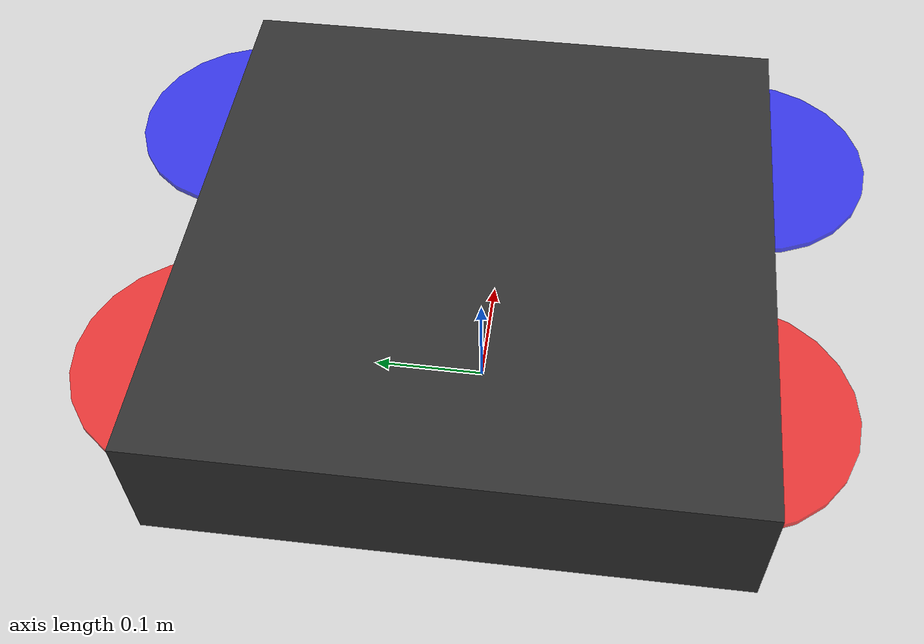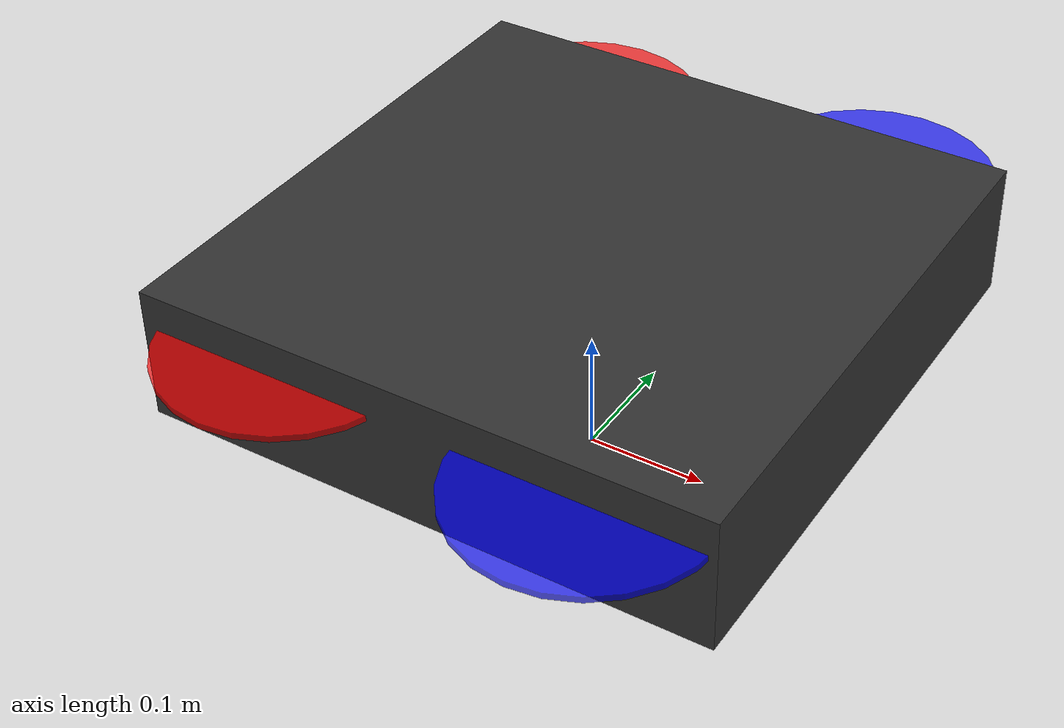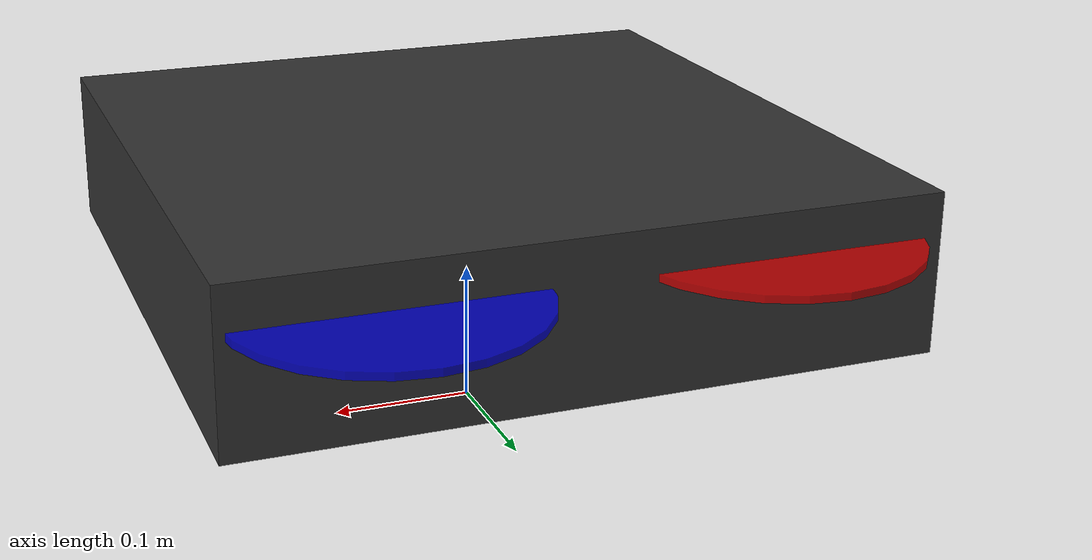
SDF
<?xml version="1.0" ?>
<sdf version="1.9">
  <model name='iris_stereo_camera'>
    <pose>0 0 0.15 0 0 0</pose>

    <link name='base_link'>
      <inertial>
        <mass>1.5</mass>
        <inertia>
          <ixx>0.029125</ixx>
          <ixy>0</ixy>
          <ixz>0</ixz>
          <iyy>0.029125</iyy>
          <iyz>0</iyz>
          <izz>0.055225</izz>
        </inertia>
      </inertial>

      <visual name='visual'>
        <geometry>
          <box>
            <size>0.47 0.47 0.11</size>
          </box>
        </geometry>
        <material>
          <ambient>0.2 0.2 0.2 1</ambient>
          <diffuse>0.2 0.2 0.2 1</diffuse>
          <specular>0.1 0.1 0.1 1</specular>
        </material>
      </visual>

      <collision name='collision'>
        <geometry>
          <box>
            <size>0.47 0.47 0.11</size>
          </box>
        </geometry>
      </collision>
    </link>

    <!-- Stereo Camera Link -->
    <link name='stereo_camera_link'>
      <pose relative_to='base_link'>0.1 0 0 0 0 0</pose>
      <inertial>
        <mass>0.015</mass>
        <inertia>
          <ixx>1e-6</ixx>
          <ixy>0</ixy>
          <ixz>0</ixz>
          <iyy>1e-6</iyy>
          <iyz>0</iyz>
          <izz>1e-6</izz>
        </inertia>
      </inertial>
    </link>

    <joint name='stereo_camera_joint' type='fixed'>
      <parent>base_link</parent>
      <child>stereo_camera_link</child>
    </joint>

    <!-- Left Camera -->
    <link name='left_camera_link'>
      <pose relative_to='stereo_camera_link'>0 0.035 0 0 0 0</pose>
      <inertial>
        <mass>0.01</mass>
        <inertia>
          <ixx>1e-6</ixx>
          <ixy>0</ixy>
          <ixz>0</ixz>
          <iyy>1e-6</iyy>
          <iyz>0</iyz>
          <izz>1e-6</izz>
        </inertia>
      </inertial>

      <sensor name='left_camera' type='camera'>
        <camera>
          <horizontal_fov>1.047</horizontal_fov>
          <image>
            <width>640</width>
            <height>480</height>
            <format>R8G8B8</format>
          </image>
          <clip>
            <near>0.1</near>
            <far>100</far>
          </clip>
          <distortion>
            <k1>0.0</k1>
            <k2>0.0</k2>
            <k3>0.0</k3>
            <p1>0.0</p1>
            <p2>0.0</p2>
            <center>0.5 0.5</center>
          </distortion>
        </camera>
        <always_on>1</always_on>
        <update_rate>30</update_rate>
        <visualize>true</visualize>
        <topic>/left_camera</topic>
      </sensor>
    </link>

    <joint name='left_camera_joint' type='fixed'>
      <parent>stereo_camera_link</parent>
      <child>left_camera_link</child>
    </joint>

    <!-- Right Camera -->
    <link name='right_camera_link'>
      <pose relative_to='stereo_camera_link'>0 -0.035 0 0 0 0</pose>
      <inertial>
        <mass>0.01</mass>
        <inertia>
          <ixx>1e-6</ixx>
          <ixy>0</ixy>
          <ixz>0</ixz>
          <iyy>1e-6</iyy>
          <iyz>0</iyz>
          <izz>1e-6</izz>
        </inertia>
      </inertial>

      <sensor name='right_camera' type='camera'>
        <camera>
          <horizontal_fov>1.047</horizontal_fov>
          <image>
            <width>640</width>
            <height>480</height>
            <format>R8G8B8</format>
          </image>
          <clip>
            <near>0.1</near>
            <far>100</far>
          </clip>
          <distortion>
            <k1>0.0</k1>
            <k2>0.0</k2>
            <k3>0.0</k3>
            <p1>0.0</p1>
            <p2>0.0</p2>
            <center>0.5 0.5</center>
          </distortion>
        </camera>
        <always_on>1</always_on>
        <update_rate>30</update_rate>
        <visualize>true</visualize>
        <topic>/right_camera</topic>
      </sensor>
    </link>

    <joint name='right_camera_joint' type='fixed'>
      <parent>stereo_camera_link</parent>
      <child>right_camera_link</child>
    </joint>

    <!-- IMU Sensor -->
    <link name='imu_link'>
      <pose relative_to='base_link'>0 0 0 0 0 0</pose>
      <inertial>
        <mass>0.01</mass>
        <inertia>
          <ixx>1e-6</ixx>
          <ixy>0</ixy>
          <ixz>0</ixz>
          <iyy>1e-6</iyy>
          <iyz>0</iyz>
          <izz>1e-6</izz>
        </inertia>
      </inertial>

      <sensor name='imu_sensor' type='imu'>
        <always_on>1</always_on>
        <update_rate>250</update_rate>
        <topic>/imu</topic>
        <imu>
          <angular_velocity>
            <x>
              <noise type="gaussian">
                <mean>0.0</mean>
                <stddev>2e-4</stddev>
              </noise>
            </x>
            <y>
              <noise type="gaussian">
                <mean>0.0</mean>
                <stddev>2e-4</stddev>
              </noise>
            </y>
            <z>
              <noise type="gaussian">
                <mean>0.0</mean>
                <stddev>2e-4</stddev>
              </noise>
            </z>
          </angular_velocity>
          <linear_acceleration>
            <x>
              <noise type="gaussian">
                <mean>0.0</mean>
                <stddev>1.7e-2</stddev>
              </noise>
            </x>
            <y>
              <noise type="gaussian">
                <mean>0.0</mean>
                <stddev>1.7e-2</stddev>
              </noise>
            </y>
            <z>
              <noise type="gaussian">
                <mean>0.0</mean>
                <stddev>1.7e-2</stddev>
              </noise>
            </z>
          </linear_acceleration>
        </imu>
      </sensor>
    </link>

    <joint name='imu_joint' type='fixed'>
      <parent>base_link</parent>
      <child>imu_link</child>
    </joint>

    <!-- Propellers (simplified) -->
    <link name='rotor_0'>
      <pose relative_to='base_link'>0.13 -0.22 0.023 0 0 0</pose>
      <inertial>
        <mass>0.005</mass>
        <inertia>
          <ixx>9.75e-7</ixx>
          <ixy>0</ixy>
          <ixz>0</ixz>
          <iyy>0.000166704</iyy>
          <iyz>0</iyz>
          <izz>0.000167604</izz>
        </inertia>
      </inertial>
      <visual name='visual'>
        <geometry>
          <cylinder>
            <radius>0.1</radius>
            <length>0.005</length>
          </cylinder>
        </geometry>
        <material>
          <ambient>0 0 1 0.7</ambient>
          <diffuse>0 0 1 0.7</diffuse>
        </material>
      </visual>
    </link>

    <joint name='rotor_0_joint' type='revolute'>
      <parent>base_link</parent>
      <child>rotor_0</child>
      <axis>
        <xyz>0 0 1</xyz>
        <limit>
          <lower>-1e+12</lower>
          <upper>1e+12</upper>
        </limit>
      </axis>
    </joint>

    <link name='rotor_1'>
      <pose relative_to='base_link'>-0.13 0.20 0.023 0 0 0</pose>
      <inertial>
        <mass>0.005</mass>
        <inertia>
          <ixx>9.75e-7</ixx>
          <ixy>0</ixy>
          <ixz>0</ixz>
          <iyy>0.000166704</iyy>
          <iyz>0</iyz>
          <izz>0.000167604</izz>
        </inertia>
      </inertial>
      <visual name='visual'>
        <geometry>
          <cylinder>
            <radius>0.1</radius>
            <length>0.005</length>
          </cylinder>
        </geometry>
        <material>
          <ambient>1 0 0 0.7</ambient>
          <diffuse>1 0 0 0.7</diffuse>
        </material>
      </visual>
    </link>

    <joint name='rotor_1_joint' type='revolute'>
      <parent>base_link</parent>
      <child>rotor_1</child>
      <axis>
        <xyz>0 0 1</xyz>
        <limit>
          <lower>-1e+12</lower>
          <upper>1e+12</upper>
        </limit>
      </axis>
    </joint>

    <link name='rotor_2'>
      <pose relative_to='base_link'>0.13 0.22 0.023 0 0 0</pose>
      <inertial>
        <mass>0.005</mass>
        <inertia>
          <ixx>9.75e-7</ixx>
          <ixy>0</ixy>
          <ixz>0</ixz>
          <iyy>0.000166704</iyy>
          <iyz>0</iyz>
          <izz>0.000167604</izz>
        </inertia>
      </inertial>
      <visual name='visual'>
        <geometry>
          <cylinder>
            <radius>0.1</radius>
            <length>0.005</length>
          </cylinder>
        </geometry>
        <material>
          <ambient>0 0 1 0.7</ambient>
          <diffuse>0 0 1 0.7</diffuse>
        </material>
      </visual>
    </link>

    <joint name='rotor_2_joint' type='revolute'>
      <parent>base_link</parent>
      <child>rotor_2</child>
      <axis>
        <xyz>0 0 1</xyz>
        <limit>
          <lower>-1e+12</lower>
          <upper>1e+12</upper>
        </limit>
      </axis>
    </joint>

    <link name='rotor_3'>
      <pose relative_to='base_link'>-0.13 -0.20 0.023 0 0 0</pose>
      <inertial>
        <mass>0.005</mass>
        <inertia>
          <ixx>9.75e-7</ixx>
          <ixy>0</ixy>
          <ixz>0</ixz>
          <iyy>0.000166704</iyy>
          <iyz>0</iyz>
          <izz>0.000167604</izz>
        </inertia>
      </inertial>
      <visual name='visual'>
        <geometry>
          <cylinder>
            <radius>0.1</radius>
            <length>0.005</length>
          </cylinder>
        </geometry>
        <material>
          <ambient>1 0 0 0.7</ambient>
          <diffuse>1 0 0 0.7</diffuse>
        </material>
      </visual>
    </link>

    <joint name='rotor_3_joint' type='revolute'>
      <parent>base_link</parent>
      <child>rotor_3</child>
      <axis>
        <xyz>0 0 1</xyz>
        <limit>
          <lower>-1e+12</lower>
          <upper>1e+12</upper>
        </limit>
      </axis>
    </joint>

    <!-- Plugins -->
    <plugin
      filename="gz-sim-multicopter-motor-model-system"
      name="gz::sim::systems::MulticopterMotorModel">
      <robotNamespace>model/iris_stereo_camera</robotNamespace>
      <jointName>rotor_0_joint</jointName>
      <linkName>rotor_0</linkName>
      <turningDirection>ccw</turningDirection>
      <timeConstantUp>0.0125</timeConstantUp>
      <timeConstantDown>0.025</timeConstantDown>
      <maxRotVelocity>800</maxRotVelocity>
      <motorConstant>8.54858e-06</motorConstant>
      <momentConstant>0.016</momentConstant>
      <commandSubTopic>command/motor_speed</commandSubTopic>
      <motorNumber>0</motorNumber>
      <rotorDragCoefficient>8.06428e-05</rotorDragCoefficient>
      <rollingMomentCoefficient>1e-06</rollingMomentCoefficient>
      <motorSpeedPubTopic>motor_speed/0</motorSpeedPubTopic>
      <rotorVelocitySlowdownSim>10</rotorVelocitySlowdownSim>
    </plugin>

    <plugin
      filename="gz-sim-multicopter-motor-model-system"
      name="gz::sim::systems::MulticopterMotorModel">
      <robotNamespace>model/iris_stereo_camera</robotNamespace>
      <jointName>rotor_1_joint</jointName>
      <linkName>rotor_1</linkName>
      <turningDirection>ccw</turningDirection>
      <timeConstantUp>0.0125</timeConstantUp>
      <timeConstantDown>0.025</timeConstantDown>
      <maxRotVelocity>800</maxRotVelocity>
      <motorConstant>8.54858e-06</motorConstant>
      <momentConstant>0.016</momentConstant>
      <commandSubTopic>command/motor_speed</commandSubTopic>
      <motorNumber>1</motorNumber>
      <rotorDragCoefficient>8.06428e-05</rotorDragCoefficient>
      <rollingMomentCoefficient>1e-06</rollingMomentCoefficient>
      <motorSpeedPubTopic>motor_speed/1</motorSpeedPubTopic>
      <rotorVelocitySlowdownSim>10</rotorVelocitySlowdownSim>
    </plugin>

    <plugin
      filename="gz-sim-multicopter-motor-model-system"
      name="gz::sim::systems::MulticopterMotorModel">
      <robotNamespace>model/iris_stereo_camera</robotNamespace>
      <jointName>rotor_2_joint</jointName>
      <linkName>rotor_2</linkName>
      <turningDirection>cw</turningDirection>
      <timeConstantUp>0.0125</timeConstantUp>
      <timeConstantDown>0.025</timeConstantDown>
      <maxRotVelocity>800</maxRotVelocity>
      <motorConstant>8.54858e-06</motorConstant>
      <momentConstant>0.016</momentConstant>
      <commandSubTopic>command/motor_speed</commandSubTopic>
      <motorNumber>2</motorNumber>
      <rotorDragCoefficient>8.06428e-05</rotorDragCoefficient>
      <rollingMomentCoefficient>1e-06</rollingMomentCoefficient>
      <motorSpeedPubTopic>motor_speed/2</motorSpeedPubTopic>
      <rotorVelocitySlowdownSim>10</rotorVelocitySlowdownSim>
    </plugin>

    <plugin
      filename="gz-sim-multicopter-motor-model-system"
      name="gz::sim::systems::MulticopterMotorModel">
      <robotNamespace>model/iris_stereo_camera</robotNamespace>
      <jointName>rotor_3_joint</jointName>
      <linkName>rotor_3</linkName>
      <turningDirection>cw</turningDirection>
      <timeConstantUp>0.0125</timeConstantUp>
      <timeConstantDown>0.025</timeConstantDown>
      <maxRotVelocity>800</maxRotVelocity>
      <motorConstant>8.54858e-06</motorConstant>
      <momentConstant>0.016</momentConstant>
      <commandSubTopic>command/motor_speed</commandSubTopic>
      <motorNumber>3</motorNumber>
      <rotorDragCoefficient>8.06428e-05</rotorDragCoefficient>
      <rollingMomentCoefficient>1e-06</rollingMomentCoefficient>
      <motorSpeedPubTopic>motor_speed/3</motorSpeedPubTopic>
      <rotorVelocitySlowdownSim>10</rotorVelocitySlowdownSim>
    </plugin>

  </model>
</sdf>
